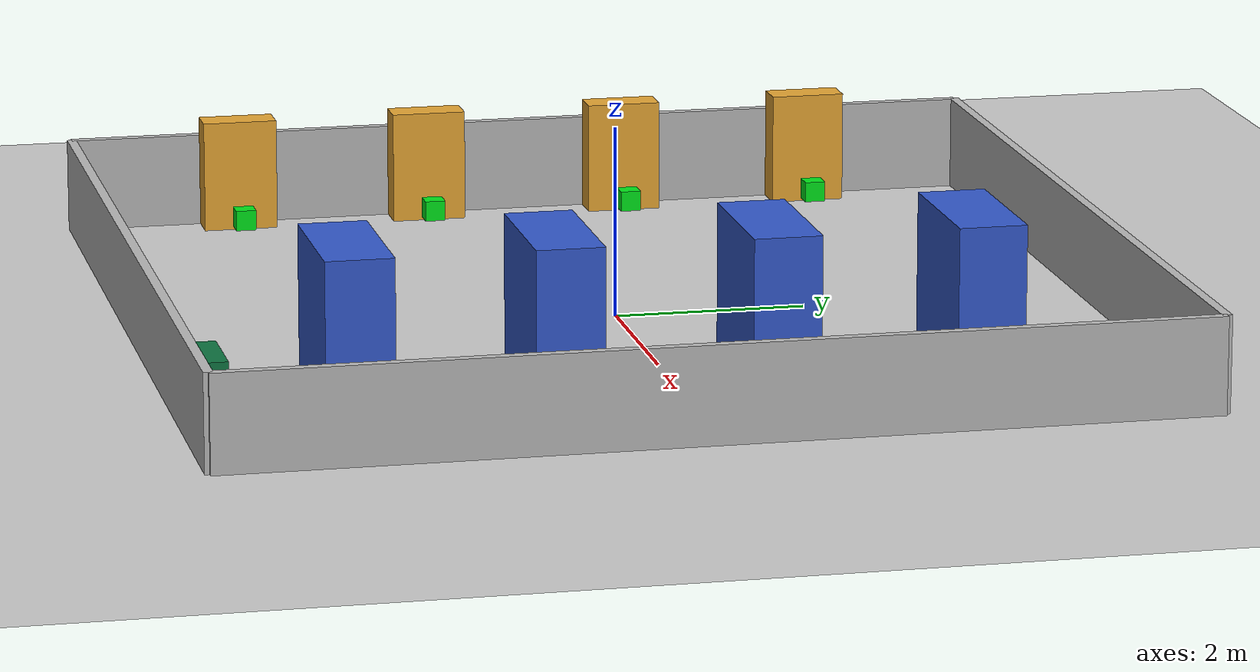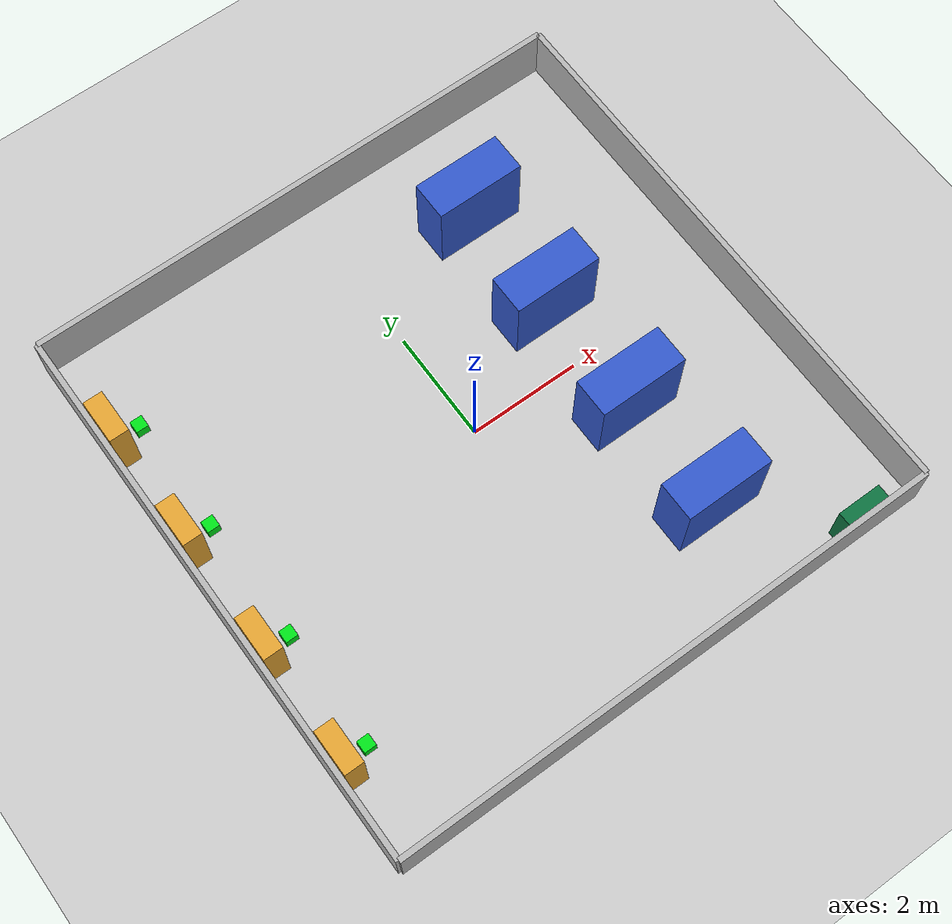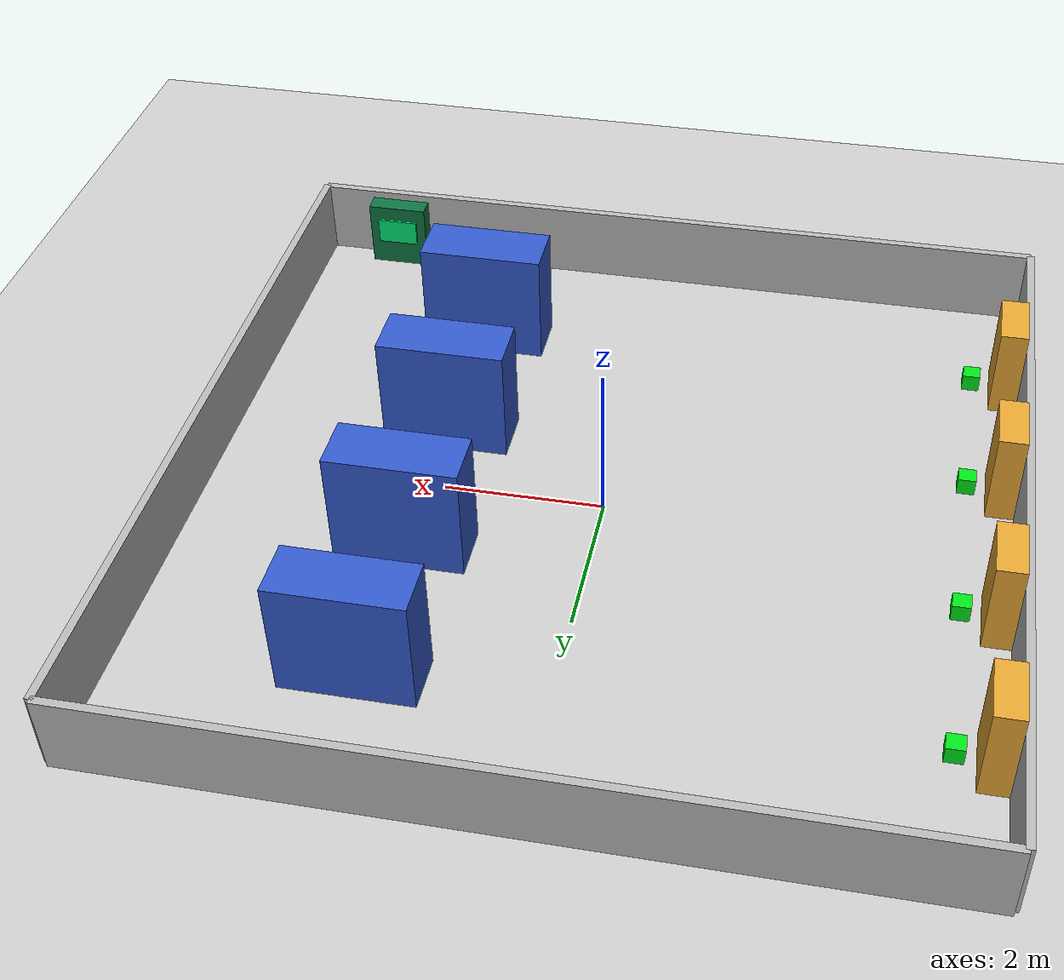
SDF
<?xml version="1.0" ?>
<sdf version="1.6">
  <world name="logistics_warehouse">
    <include><uri>model://sun</uri></include>
    <include><uri>model://ground_plane</uri></include>

    <model name="perimeter_walls">
      <static>true</static>
      <link name="link">
        <collision name="east"><pose>5 0 0.5 0 0 0</pose><geometry><box><size>0.1 10 1</size></box></geometry></collision>
        <visual name="east_v"><pose>5 0 0.5 0 0 0</pose><geometry><box><size>0.1 10 1</size></box></geometry></visual>
        <collision name="west"><pose>-5 0 0.5 0 0 0</pose><geometry><box><size>0.1 10 1</size></box></geometry></collision>
        <visual name="west_v"><pose>-5 0 0.5 0 0 0</pose><geometry><box><size>0.1 10 1</size></box></geometry></visual>
        <collision name="south"><pose>0 -5 0.5 0 0 1.5708</pose><geometry><box><size>0.1 10 1</size></box></geometry></collision>
        <visual name="south_v"><pose>0 -5 0.5 0 0 1.5708</pose><geometry><box><size>0.1 10 1</size></box></geometry></visual>
        <collision name="north"><pose>0 5 0.5 0 0 1.5708</pose><geometry><box><size>0.1 10 1</size></box></geometry></collision>
        <visual name="north_v"><pose>0 5 0.5 0 0 1.5708</pose><geometry><box><size>0.1 10 1</size></box></geometry></visual>
      </link>
    </model>

    <model name="cargo_cell_1"><static>true</static><pose>-4.775 -3.2 0.6 0 0 0</pose><link name="link"><collision name="c"><geometry><box><size>0.35 0.8 1.2</size></box></geometry></collision><visual name="v"><geometry><box><size>0.35 0.8 1.2</size></box></geometry><material><ambient>0.9 0.65 0.2 1</ambient><diffuse>0.9 0.65 0.2 1</diffuse></material></visual></link></model>
    <model name="cargo_cell_2"><static>true</static><pose>-4.775 -1.1 0.6 0 0 0</pose><link name="link"><collision name="c"><geometry><box><size>0.35 0.8 1.2</size></box></geometry></collision><visual name="v"><geometry><box><size>0.35 0.8 1.2</size></box></geometry><material><ambient>0.9 0.65 0.2 1</ambient><diffuse>0.9 0.65 0.2 1</diffuse></material></visual></link></model>
    <model name="cargo_cell_3"><static>true</static><pose>-4.775 1.1 0.6 0 0 0</pose><link name="link"><collision name="c"><geometry><box><size>0.35 0.8 1.2</size></box></geometry></collision><visual name="v"><geometry><box><size>0.35 0.8 1.2</size></box></geometry><material><ambient>0.9 0.65 0.2 1</ambient><diffuse>0.9 0.65 0.2 1</diffuse></material></visual></link></model>
    <model name="cargo_cell_4"><static>true</static><pose>-4.775 3.2 0.6 0 0 0</pose><link name="link"><collision name="c"><geometry><box><size>0.35 0.8 1.2</size></box></geometry></collision><visual name="v"><geometry><box><size>0.35 0.8 1.2</size></box></geometry><material><ambient>0.9 0.65 0.2 1</ambient><diffuse>0.9 0.65 0.2 1</diffuse></material></visual></link></model>

    <model name="green_cargo_1"><static>true</static><pose>-4.35 -3.2 0.18 0 0 0</pose><link name="link"><collision name="c"><geometry><box><size>0.22 0.22 0.22</size></box></geometry></collision><visual name="v"><geometry><box><size>0.22 0.22 0.22</size></box></geometry><material><ambient>0.0 0.9 0.1 1</ambient><diffuse>0.0 0.9 0.1 1</diffuse></material></visual></link></model>
    <model name="green_cargo_2"><static>true</static><pose>-4.35 -1.1 0.18 0 0 0</pose><link name="link"><collision name="c"><geometry><box><size>0.22 0.22 0.22</size></box></geometry></collision><visual name="v"><geometry><box><size>0.22 0.22 0.22</size></box></geometry><material><ambient>0.0 0.9 0.1 1</ambient><diffuse>0.0 0.9 0.1 1</diffuse></material></visual></link></model>
    <model name="green_cargo_3"><static>true</static><pose>-4.35 1.1 0.18 0 0 0</pose><link name="link"><collision name="c"><geometry><box><size>0.22 0.22 0.22</size></box></geometry></collision><visual name="v"><geometry><box><size>0.22 0.22 0.22</size></box></geometry><material><ambient>0.0 0.9 0.1 1</ambient><diffuse>0.0 0.9 0.1 1</diffuse></material></visual></link></model>
    <model name="green_cargo_4"><static>true</static><pose>-4.35 3.2 0.18 0 0 0</pose><link name="link"><collision name="c"><geometry><box><size>0.22 0.22 0.22</size></box></geometry></collision><visual name="v"><geometry><box><size>0.22 0.22 0.22</size></box></geometry><material><ambient>0.0 0.9 0.1 1</ambient><diffuse>0.0 0.9 0.1 1</diffuse></material></visual></link></model>

    <model name="shelf_1"><static>true</static><pose>2.2 -3.2 0.75 0 0 0</pose><link name="link"><collision name="c"><geometry><box><size>1.6 0.7 1.5</size></box></geometry></collision><visual name="v"><geometry><box><size>1.6 0.7 1.5</size></box></geometry><material><ambient>0.2 0.35 0.8 1</ambient><diffuse>0.2 0.35 0.8 1</diffuse></material></visual></link></model>
    <model name="shelf_2"><static>true</static><pose>2.2 -1.1 0.75 0 0 0</pose><link name="link"><collision name="c"><geometry><box><size>1.6 0.7 1.5</size></box></geometry></collision><visual name="v"><geometry><box><size>1.6 0.7 1.5</size></box></geometry><material><ambient>0.2 0.35 0.8 1</ambient><diffuse>0.2 0.35 0.8 1</diffuse></material></visual></link></model>
    <model name="shelf_3"><static>true</static><pose>2.2 1.1 0.75 0 0 0</pose><link name="link"><collision name="c"><geometry><box><size>1.6 0.7 1.5</size></box></geometry></collision><visual name="v"><geometry><box><size>1.6 0.7 1.5</size></box></geometry><material><ambient>0.2 0.35 0.8 1</ambient><diffuse>0.2 0.35 0.8 1</diffuse></material></visual></link></model>
    <model name="shelf_4"><static>true</static><pose>2.2 3.2 0.75 0 0 0</pose><link name="link"><collision name="c"><geometry><box><size>1.6 0.7 1.5</size></box></geometry></collision><visual name="v"><geometry><box><size>1.6 0.7 1.5</size></box></geometry><material><ambient>0.2 0.35 0.8 1</ambient><diffuse>0.2 0.35 0.8 1</diffuse></material></visual></link></model>

    <model name="charging_station">
      <static>true</static>
      <pose>3.9 -4.825 0.45 0 0 0</pose>
      <link name="link">
        <collision name="base"><pose>0 0 0 0 0 0</pose><geometry><box><size>0.8 0.25 0.9</size></box></geometry></collision>
        <visual name="base_v"><pose>0 0 0 0 0 0</pose><geometry><box><size>0.8 0.25 0.9</size></box></geometry>
          <material><ambient>0.05 0.45 0.25 1</ambient><diffuse>0.05 0.45 0.25 1</diffuse></material>
        </visual>
        <visual name="dock_panel"><pose>0 0.14 0.08 0 0 0</pose><geometry><box><size>0.55 0.03 0.35</size></box></geometry>
          <material><ambient>0.0 0.9 0.45 1</ambient><diffuse>0.0 0.9 0.45 1</diffuse></material>
        </visual>
      </link>
    </model>
  </world>
</sdf>
